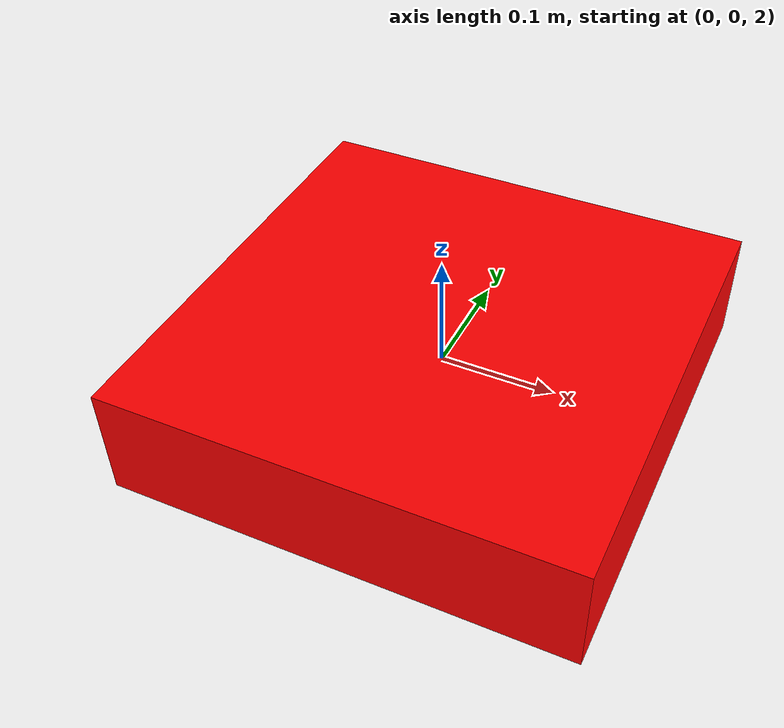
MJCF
<mujoco>
    <option timestep="0.01" gravity="0 0 -9.81"/>

    <worldbody>

        <geom name="floor" type="plane" size="20 20 0.1"/>

        <body name="drone" pos="0 0 2">
            <freejoint/>

            <geom type="box" size="0.2 0.2 0.05" rgba="1 0 0 1"/>

            <inertial pos="0 0 0" mass="1" diaginertia="0.01 0.01 0.005"/>
        </body>

    </worldbody>
</mujoco>
